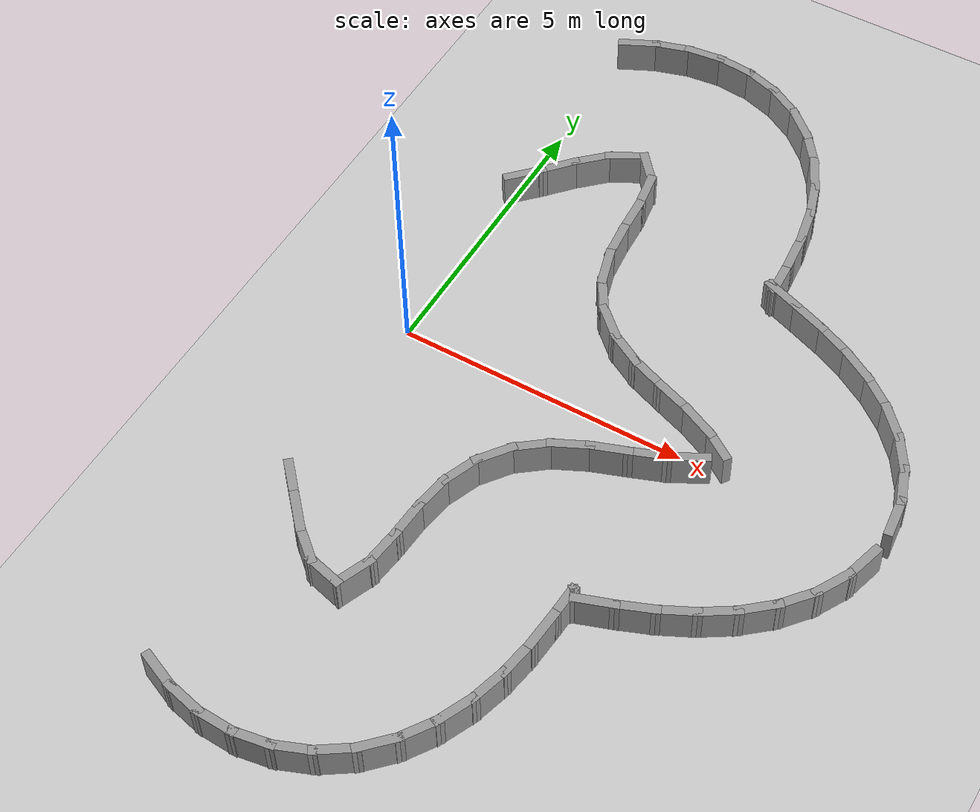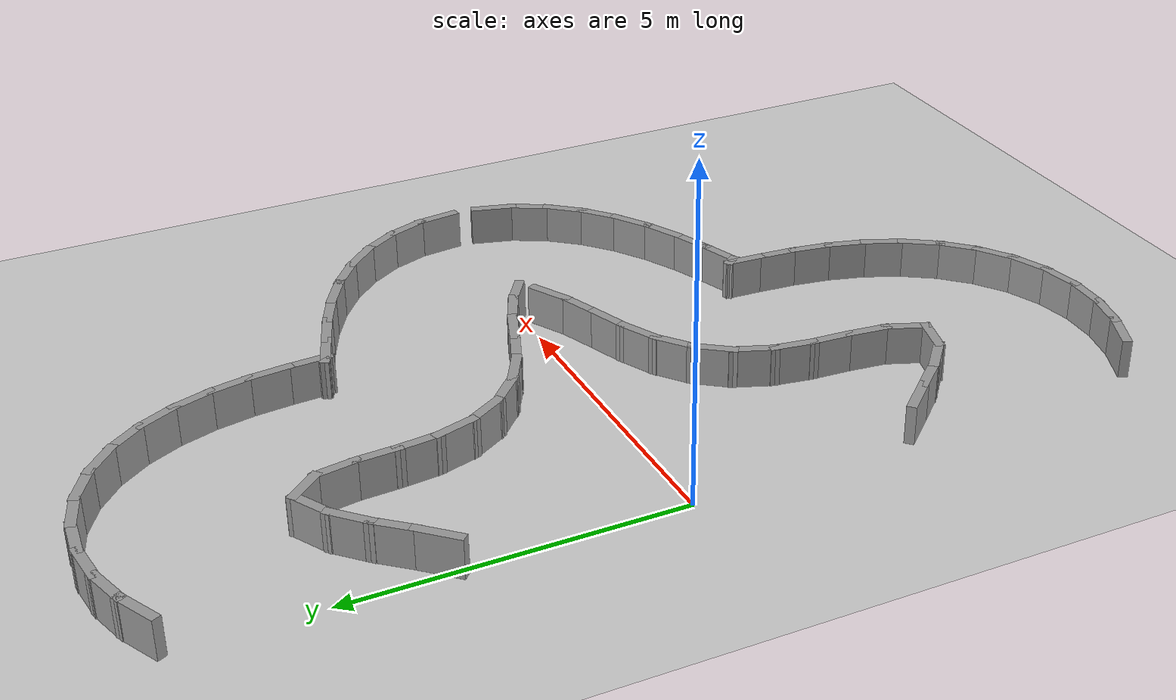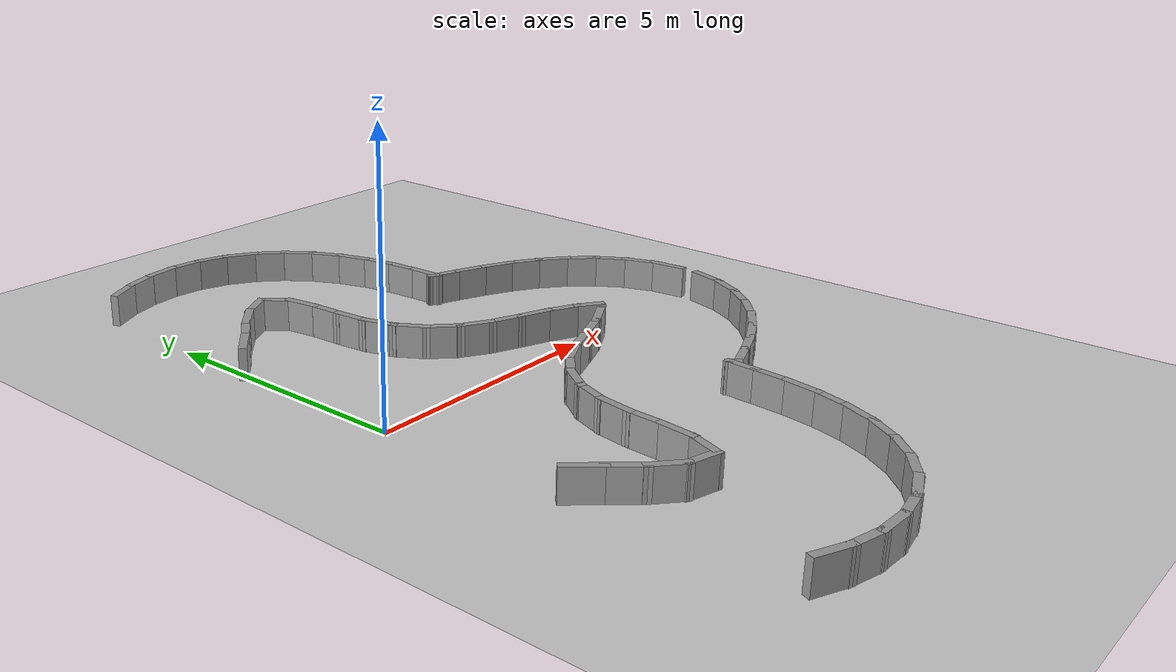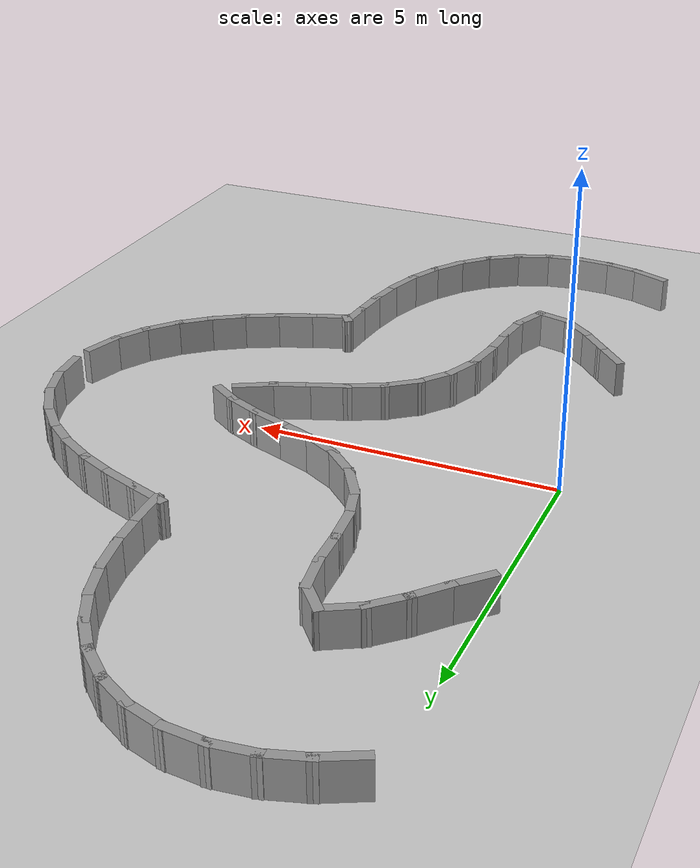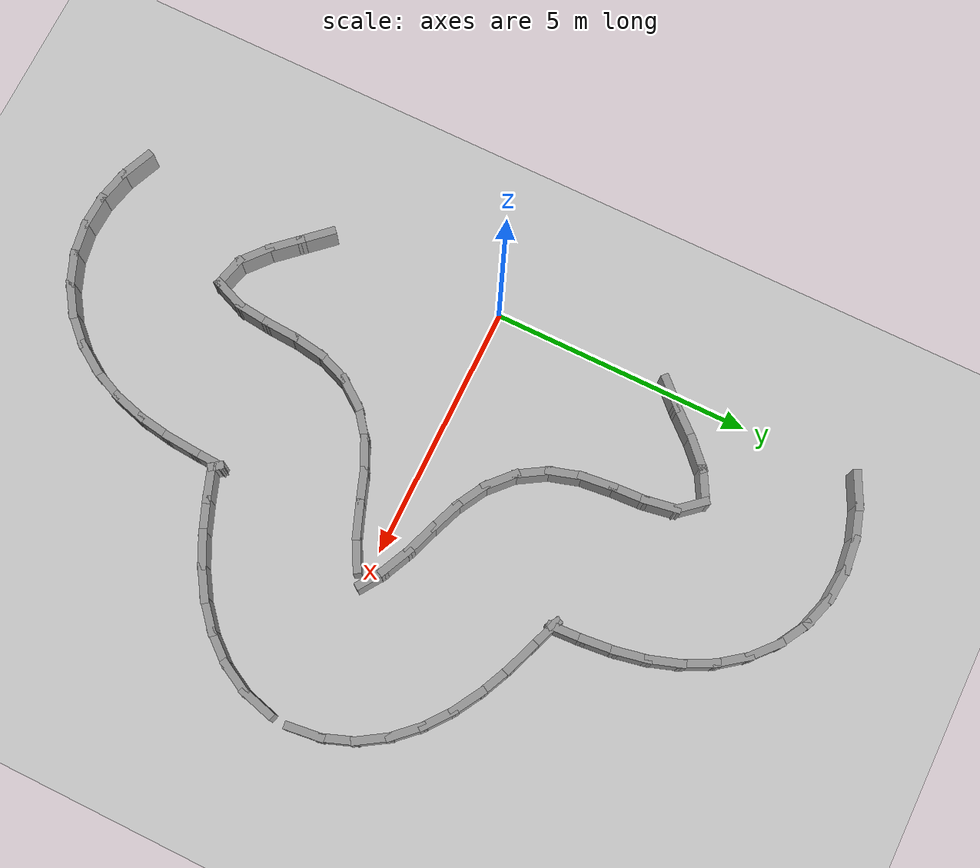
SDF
<sdf version="1.7">
 <world name="default">
  <model name="ground_plane">
   <static>1</static>
   <link name="link">
    <collision name="collision">
     <geometry><plane><normal>0 0 1</normal><size>100 100</size></plane></geometry>
     <surface><friction><ode><mu>100</mu><mu2>50</mu2></ode></friction></surface>
    </collision>
    <visual name="visual">
     <cast_shadows>0</cast_shadows>
     <geometry><plane><normal>0 0 1</normal><size>100 100</size></plane></geometry>
     <material>
      <script><uri>file://media/materials/scripts/gazebo.material</uri><name>Gazebo/Grey</name></script>
     </material>
    </visual>
   </link>
  </model>
  <model name="rand_lobed_02">
   <link name="Wall_0">
    <collision name="Wall_0_Collision">
     <geometry><box><size>0.6231 0.1500 0.6000</size></box></geometry>
     <pose>0 0 0.3000 0 -0 0</pose>
    </collision>
    <visual name="Wall_0_Visual">
     <pose>0 0 0.3000 0 -0 0</pose>
     <geometry><box><size>0.6231 0.1500 0.6000</size></box></geometry>
     <material>
      <script><uri>file://media/materials/scripts/gazebo.material</uri><name>Gazebo/Grey</name></script>
      <ambient>1 1 1 1</ambient>
     </material>
    </visual>
    <pose>5.5545 0.1311 0 0 -0 2.55400</pose>
   </link>
   <link name="Wall_1">
    <collision name="Wall_1_Collision">
     <geometry><box><size>0.7494 0.1500 0.6000</size></box></geometry>
     <pose>0 0 0.3000 0 -0 0</pose>
    </collision>
    <visual name="Wall_1_Visual">
     <pose>0 0 0.3000 0 -0 0</pose>
     <geometry><box><size>0.7494 0.1500 0.6000</size></box></geometry>
     <material>
      <script><uri>file://media/materials/scripts/gazebo.material</uri><name>Gazebo/Grey</name></script>
      <ambient>1 1 1 1</ambient>
     </material>
    </visual>
    <pose>5.0855 0.3879 0 0 -0 2.70903</pose>
   </link>
   <link name="Wall_2">
    <collision name="Wall_2_Collision">
     <geometry><box><size>0.7500 0.1500 0.6000</size></box></geometry>
     <pose>0 0 0.3000 0 -0 0</pose>
    </collision>
    <visual name="Wall_2_Visual">
     <pose>0 0 0.3000 0 -0 0</pose>
     <geometry><box><size>0.7500 0.1500 0.6000</size></box></geometry>
     <material>
      <script><uri>file://media/materials/scripts/gazebo.material</uri><name>Gazebo/Grey</name></script>
      <ambient>1 1 1 1</ambient>
     </material>
    </visual>
    <pose>4.5309 0.6145 0 0 -0 2.79837</pose>
   </link>
   <link name="Wall_3">
    <collision name="Wall_3_Collision">
     <geometry><box><size>0.7498 0.1500 0.6000</size></box></geometry>
     <pose>0 0 0.3000 0 -0 0</pose>
    </collision>
    <visual name="Wall_3_Visual">
     <pose>0 0 0.3000 0 -0 0</pose>
     <geometry><box><size>0.7498 0.1500 0.6000</size></box></geometry>
     <material>
      <script><uri>file://media/materials/scripts/gazebo.material</uri><name>Gazebo/Grey</name></script>
      <ambient>1 1 1 1</ambient>
     </material>
    </visual>
    <pose>3.9682 0.8223 0 0 -0 2.77713</pose>
   </link>
   <link name="Wall_4">
    <collision name="Wall_4_Collision">
     <geometry><box><size>0.7490 0.1500 0.6000</size></box></geometry>
     <pose>0 0 0.3000 0 -0 0</pose>
    </collision>
    <visual name="Wall_4_Visual">
     <pose>0 0 0.3000 0 -0 0</pose>
     <geometry><box><size>0.7490 0.1500 0.6000</size></box></geometry>
     <material>
      <script><uri>file://media/materials/scripts/gazebo.material</uri><name>Gazebo/Grey</name></script>
      <ambient>1 1 1 1</ambient>
     </material>
    </visual>
    <pose>3.4260 1.0744 0 0 -0 2.63553</pose>
   </link>
   <link name="Wall_5">
    <collision name="Wall_5_Collision">
     <geometry><box><size>0.7482 0.1500 0.6000</size></box></geometry>
     <pose>0 0 0.3000 0 -0 0</pose>
    </collision>
    <visual name="Wall_5_Visual">
     <pose>0 0 0.3000 0 -0 0</pose>
     <geometry><box><size>0.7482 0.1500 0.6000</size></box></geometry>
     <material>
      <script><uri>file://media/materials/scripts/gazebo.material</uri><name>Gazebo/Grey</name></script>
      <ambient>1 1 1 1</ambient>
     </material>
    </visual>
    <pose>2.9437 1.4219 0 0 -0 2.39899</pose>
   </link>
   <link name="Wall_6">
    <collision name="Wall_6_Collision">
     <geometry><box><size>0.7481 0.1500 0.6000</size></box></geometry>
     <pose>0 0 0.3000 0 -0 0</pose>
    </collision>
    <visual name="Wall_6_Visual">
     <pose>0 0 0.3000 0 -0 0</pose>
     <geometry><box><size>0.7481 0.1500 0.6000</size></box></geometry>
     <material>
      <script><uri>file://media/materials/scripts/gazebo.material</uri><name>Gazebo/Grey</name></script>
      <ambient>1 1 1 1</ambient>
     </material>
    </visual>
    <pose>2.5665 1.8787 0 0 -0 2.12298</pose>
   </link>
   <link name="Wall_7">
    <collision name="Wall_7_Collision">
     <geometry><box><size>0.7486 0.1500 0.6000</size></box></geometry>
     <pose>0 0 0.3000 0 -0 0</pose>
    </collision>
    <visual name="Wall_7_Visual">
     <pose>0 0 0.3000 0 -0 0</pose>
     <geometry><box><size>0.7486 0.1500 0.6000</size></box></geometry>
     <material>
      <script><uri>file://media/materials/scripts/gazebo.material</uri><name>Gazebo/Grey</name></script>
      <ambient>1 1 1 1</ambient>
     </material>
    </visual>
    <pose>2.3234 2.4199 0 0 -0 1.86292</pose>
   </link>
   <link name="Wall_8">
    <collision name="Wall_8_Collision">
     <geometry><box><size>0.7496 0.1500 0.6000</size></box></geometry>
     <pose>0 0 0.3000 0 -0 0</pose>
    </collision>
    <visual name="Wall_8_Visual">
     <pose>0 0 0.3000 0 -0 0</pose>
     <geometry><box><size>0.7496 0.1500 0.6000</size></box></geometry>
     <material>
      <script><uri>file://media/materials/scripts/gazebo.material</uri><name>Gazebo/Grey</name></script>
      <ambient>1 1 1 1</ambient>
     </material>
    </visual>
    <pose>2.2047 3.0046 0 0 -0 1.67946</pose>
   </link>
   <link name="Wall_9">
    <collision name="Wall_9_Collision">
     <geometry><box><size>0.7500 0.1500 0.6000</size></box></geometry>
     <pose>0 0 0.3000 0 -0 0</pose>
    </collision>
    <visual name="Wall_9_Visual">
     <pose>0 0 0.3000 0 -0 0</pose>
     <geometry><box><size>0.7500 0.1500 0.6000</size></box></geometry>
     <material>
      <script><uri>file://media/materials/scripts/gazebo.material</uri><name>Gazebo/Grey</name></script>
      <ambient>1 1 1 1</ambient>
     </material>
    </visual>
    <pose>2.1546 3.6021 0 0 -0 1.62952</pose>
   </link>
   <link name="Wall_10">
    <collision name="Wall_10_Collision">
     <geometry><box><size>0.7491 0.1500 0.6000</size></box></geometry>
     <pose>0 0 0.3000 0 -0 0</pose>
    </collision>
    <visual name="Wall_10_Visual">
     <pose>0 0 0.3000 0 -0 0</pose>
     <geometry><box><size>0.7491 0.1500 0.6000</size></box></geometry>
     <material>
      <script><uri>file://media/materials/scripts/gazebo.material</uri><name>Gazebo/Grey</name></script>
      <ambient>1 1 1 1</ambient>
     </material>
    </visual>
    <pose>2.0881 4.1971 0 0 -0 1.73457</pose>
   </link>
   <link name="Wall_11">
    <collision name="Wall_11_Collision">
     <geometry><box><size>0.6831 0.1500 0.6000</size></box></geometry>
     <pose>0 0 0.3000 0 -0 0</pose>
    </collision>
    <visual name="Wall_11_Visual">
     <pose>0 0 0.3000 0 -0 0</pose>
     <geometry><box><size>0.6831 0.1500 0.6000</size></box></geometry>
     <material>
      <script><uri>file://media/materials/scripts/gazebo.material</uri><name>Gazebo/Grey</name></script>
      <ambient>1 1 1 1</ambient>
     </material>
    </visual>
    <pose>1.8645 4.6938 0 0 -0 2.28624</pose>
   </link>
   <link name="Wall_12">
    <collision name="Wall_12_Collision">
     <geometry><box><size>0.7454 0.1500 0.6000</size></box></geometry>
     <pose>0 0 0.3000 0 -0 0</pose>
    </collision>
    <visual name="Wall_12_Visual">
     <pose>0 0 0.3000 0 -0 0</pose>
     <geometry><box><size>0.7454 0.1500 0.6000</size></box></geometry>
     <material>
      <script><uri>file://media/materials/scripts/gazebo.material</uri><name>Gazebo/Grey</name></script>
      <ambient>1 1 1 1</ambient>
     </material>
    </visual>
    <pose>1.4286 4.7518 0 0 -0 -2.63997</pose>
   </link>
   <link name="Wall_13">
    <collision name="Wall_13_Collision">
     <geometry><box><size>0.7494 0.1500 0.6000</size></box></geometry>
     <pose>0 0 0.3000 0 -0 0</pose>
    </collision>
    <visual name="Wall_13_Visual">
     <pose>0 0 0.3000 0 -0 0</pose>
     <geometry><box><size>0.7494 0.1500 0.6000</size></box></geometry>
     <material>
      <script><uri>file://media/materials/scripts/gazebo.material</uri><name>Gazebo/Grey</name></script>
      <ambient>1 1 1 1</ambient>
     </material>
    </visual>
    <pose>0.9505 4.4020 0 0 -0 -2.38054</pose>
   </link>
   <link name="Wall_14">
    <collision name="Wall_14_Collision">
     <geometry><box><size>0.7500 0.1500 0.6000</size></box></geometry>
     <pose>0 0 0.3000 0 -0 0</pose>
    </collision>
    <visual name="Wall_14_Visual">
     <pose>0 0 0.3000 0 -0 0</pose>
     <geometry><box><size>0.7500 0.1500 0.6000</size></box></geometry>
     <material>
      <script><uri>file://media/materials/scripts/gazebo.material</uri><name>Gazebo/Grey</name></script>
      <ambient>1 1 1 1</ambient>
     </material>
    </visual>
    <pose>0.5348 3.9705 0 0 -0 -2.29493</pose>
   </link>
   <link name="Wall_15">
    <collision name="Wall_15_Collision">
     <geometry><box><size>0.7497 0.1500 0.6000</size></box></geometry>
     <pose>0 0 0.3000 0 -0 0</pose>
    </collision>
    <visual name="Wall_15_Visual">
     <pose>0 0 0.3000 0 -0 0</pose>
     <geometry><box><size>0.7497 0.1500 0.6000</size></box></geometry>
     <material>
      <script><uri>file://media/materials/scripts/gazebo.material</uri><name>Gazebo/Grey</name></script>
      <ambient>1 1 1 1</ambient>
     </material>
    </visual>
    <pose>0.1277 3.5302 0 0 -0 -2.33905</pose>
   </link>
   <link name="Wall_44">
    <collision name="Wall_44_Collision">
     <geometry><box><size>0.7499 0.1500 0.6000</size></box></geometry>
     <pose>0 0 0.3000 0 -0 0</pose>
    </collision>
    <visual name="Wall_44_Visual">
     <pose>0 0 0.3000 0 -0 0</pose>
     <geometry><box><size>0.7499 0.1500 0.6000</size></box></geometry>
     <material>
      <script><uri>file://media/materials/scripts/gazebo.material</uri><name>Gazebo/Grey</name></script>
      <ambient>1 1 1 1</ambient>
     </material>
    </visual>
    <pose>0.2588 -3.6670 0 0 -0 -0.83092</pose>
   </link>
   <link name="Wall_45">
    <collision name="Wall_45_Collision">
     <geometry><box><size>0.7499 0.1500 0.6000</size></box></geometry>
     <pose>0 0 0.3000 0 -0 0</pose>
    </collision>
    <visual name="Wall_45_Visual">
     <pose>0 0 0.3000 0 -0 0</pose>
     <geometry><box><size>0.7499 0.1500 0.6000</size></box></geometry>
     <material>
      <script><uri>file://media/materials/scripts/gazebo.material</uri><name>Gazebo/Grey</name></script>
      <ambient>1 1 1 1</ambient>
     </material>
    </visual>
    <pose>0.6627 -4.1105 0 0 -0 -0.83336</pose>
   </link>
   <link name="Wall_46">
    <collision name="Wall_46_Collision">
     <geometry><box><size>0.7490 0.1500 0.6000</size></box></geometry>
     <pose>0 0 0.3000 0 -0 0</pose>
    </collision>
    <visual name="Wall_46_Visual">
     <pose>0 0 0.3000 0 -0 0</pose>
     <geometry><box><size>0.7490 0.1500 0.6000</size></box></geometry>
     <material>
      <script><uri>file://media/materials/scripts/gazebo.material</uri><name>Gazebo/Grey</name></script>
      <ambient>1 1 1 1</ambient>
     </material>
    </visual>
    <pose>1.0924 -4.5267 0 0 -0 -0.70524</pose>
   </link>
   <link name="Wall_47">
    <collision name="Wall_47_Collision">
     <geometry><box><size>0.7100 0.1500 0.6000</size></box></geometry>
     <pose>0 0 0.3000 0 -0 0</pose>
    </collision>
    <visual name="Wall_47_Visual">
     <pose>0 0 0.3000 0 -0 0</pose>
     <geometry><box><size>0.7100 0.1500 0.6000</size></box></geometry>
     <material>
      <script><uri>file://media/materials/scripts/gazebo.material</uri><name>Gazebo/Grey</name></script>
      <ambient>1 1 1 1</ambient>
     </material>
    </visual>
    <pose>1.5917 -4.7902 0 0 -0 -0.25059</pose>
   </link>
   <link name="Wall_48">
    <collision name="Wall_48_Collision">
     <geometry><box><size>0.7439 0.1500 0.6000</size></box></geometry>
     <pose>0 0 0.3000 0 -0 0</pose>
    </collision>
    <visual name="Wall_48_Visual">
     <pose>0 0 0.3000 0 -0 0</pose>
     <geometry><box><size>0.7439 0.1500 0.6000</size></box></geometry>
     <material>
      <script><uri>file://media/materials/scripts/gazebo.material</uri><name>Gazebo/Grey</name></script>
      <ambient>1 1 1 1</ambient>
     </material>
    </visual>
    <pose>1.9731 -4.5839 0 0 -0 1.19066</pose>
   </link>
   <link name="Wall_49">
    <collision name="Wall_49_Collision">
     <geometry><box><size>0.7496 0.1500 0.6000</size></box></geometry>
     <pose>0 0 0.3000 0 -0 0</pose>
    </collision>
    <visual name="Wall_49_Visual">
     <pose>0 0 0.3000 0 -0 0</pose>
     <geometry><box><size>0.7496 0.1500 0.6000</size></box></geometry>
     <material>
      <script><uri>file://media/materials/scripts/gazebo.material</uri><name>Gazebo/Grey</name></script>
      <ambient>1 1 1 1</ambient>
     </material>
    </visual>
    <pose>2.1168 -4.0103 0 0 -0 1.45869</pose>
   </link>
   <link name="Wall_50">
    <collision name="Wall_50_Collision">
     <geometry><box><size>0.7500 0.1500 0.6000</size></box></geometry>
     <pose>0 0 0.3000 0 -0 0</pose>
    </collision>
    <visual name="Wall_50_Visual">
     <pose>0 0 0.3000 0 -0 0</pose>
     <geometry><box><size>0.7500 0.1500 0.6000</size></box></geometry>
     <material>
      <script><uri>file://media/materials/scripts/gazebo.material</uri><name>Gazebo/Grey</name></script>
      <ambient>1 1 1 1</ambient>
     </material>
    </visual>
    <pose>2.1678 -3.4129 0 0 -0 1.51250</pose>
   </link>
   <link name="Wall_51">
    <collision name="Wall_51_Collision">
     <geometry><box><size>0.7493 0.1500 0.6000</size></box></geometry>
     <pose>0 0 0.3000 0 -0 0</pose>
    </collision>
    <visual name="Wall_51_Visual">
     <pose>0 0 0.3000 0 -0 0</pose>
     <geometry><box><size>0.7493 0.1500 0.6000</size></box></geometry>
     <material>
      <script><uri>file://media/materials/scripts/gazebo.material</uri><name>Gazebo/Grey</name></script>
      <ambient>1 1 1 1</ambient>
     </material>
    </visual>
    <pose>2.2314 -2.8173 0 0 -0 1.41642</pose>
   </link>
   <link name="Wall_52">
    <collision name="Wall_52_Collision">
     <geometry><box><size>0.7484 0.1500 0.6000</size></box></geometry>
     <pose>0 0 0.3000 0 -0 0</pose>
    </collision>
    <visual name="Wall_52_Visual">
     <pose>0 0 0.3000 0 -0 0</pose>
     <geometry><box><size>0.7484 0.1500 0.6000</size></box></geometry>
     <material>
      <script><uri>file://media/materials/scripts/gazebo.material</uri><name>Gazebo/Grey</name></script>
      <ambient>1 1 1 1</ambient>
     </material>
    </visual>
    <pose>2.3854 -2.2422 0 0 -0 1.20157</pose>
   </link>
   <link name="Wall_53">
    <collision name="Wall_53_Collision">
     <geometry><box><size>0.7480 0.1500 0.6000</size></box></geometry>
     <pose>0 0 0.3000 0 -0 0</pose>
    </collision>
    <visual name="Wall_53_Visual">
     <pose>0 0 0.3000 0 -0 0</pose>
     <geometry><box><size>0.7480 0.1500 0.6000</size></box></geometry>
     <material>
      <script><uri>file://media/materials/scripts/gazebo.material</uri><name>Gazebo/Grey</name></script>
      <ambient>1 1 1 1</ambient>
     </material>
    </visual>
    <pose>2.6720 -1.7234 0 0 -0 0.93051</pose>
   </link>
   <link name="Wall_54">
    <collision name="Wall_54_Collision">
     <geometry><box><size>0.7484 0.1500 0.6000</size></box></geometry>
     <pose>0 0 0.3000 0 -0 0</pose>
    </collision>
    <visual name="Wall_54_Visual">
     <pose>0 0 0.3000 0 -0 0</pose>
     <geometry><box><size>0.7484 0.1500 0.6000</size></box></geometry>
     <material>
      <script><uri>file://media/materials/scripts/gazebo.material</uri><name>Gazebo/Grey</name></script>
      <ambient>1 1 1 1</ambient>
     </material>
    </visual>
    <pose>3.0868 -1.3000 0 0 -0 0.66095</pose>
   </link>
   <link name="Wall_55">
    <collision name="Wall_55_Collision">
     <geometry><box><size>0.7493 0.1500 0.6000</size></box></geometry>
     <pose>0 0 0.3000 0 -0 0</pose>
    </collision>
    <visual name="Wall_55_Visual">
     <pose>0 0 0.3000 0 -0 0</pose>
     <geometry><box><size>0.7493 0.1500 0.6000</size></box></geometry>
     <material>
      <script><uri>file://media/materials/scripts/gazebo.material</uri><name>Gazebo/Grey</name></script>
      <ambient>1 1 1 1</ambient>
     </material>
    </visual>
    <pose>3.5930 -0.9863 0 0 -0 0.44876</pose>
   </link>
   <link name="Wall_56">
    <collision name="Wall_56_Collision">
     <geometry><box><size>0.7500 0.1500 0.6000</size></box></geometry>
     <pose>0 0 0.3000 0 -0 0</pose>
    </collision>
    <visual name="Wall_56_Visual">
     <pose>0 0 0.3000 0 -0 0</pose>
     <geometry><box><size>0.7500 0.1500 0.6000</size></box></geometry>
     <material>
      <script><uri>file://media/materials/scripts/gazebo.material</uri><name>Gazebo/Grey</name></script>
      <ambient>1 1 1 1</ambient>
     </material>
    </visual>
    <pose>4.1453 -0.7549 0 0 -0 0.34505</pose>
   </link>
   <link name="Wall_57">
    <collision name="Wall_57_Collision">
     <geometry><box><size>0.7499 0.1500 0.6000</size></box></geometry>
     <pose>0 0 0.3000 0 -0 0</pose>
    </collision>
    <visual name="Wall_57_Visual">
     <pose>0 0 0.3000 0 -0 0</pose>
     <geometry><box><size>0.7499 0.1500 0.6000</size></box></geometry>
     <material>
      <script><uri>file://media/materials/scripts/gazebo.material</uri><name>Gazebo/Grey</name></script>
      <ambient>1 1 1 1</ambient>
     </material>
    </visual>
    <pose>4.7084 -0.5478 0 0 -0 0.35956</pose>
   </link>
   <link name="Wall_58">
    <collision name="Wall_58_Collision">
     <geometry><box><size>0.7490 0.1500 0.6000</size></box></geometry>
     <pose>0 0 0.3000 0 -0 0</pose>
    </collision>
    <visual name="Wall_58_Visual">
     <pose>0 0 0.3000 0 -0 0</pose>
     <geometry><box><size>0.7490 0.1500 0.6000</size></box></geometry>
     <material>
      <script><uri>file://media/materials/scripts/gazebo.material</uri><name>Gazebo/Grey</name></script>
      <ambient>1 1 1 1</ambient>
     </material>
    </visual>
    <pose>5.2536 -0.3019 0 0 -0 0.48808</pose>
   </link>
   <link name="Wall_59">
    <collision name="Wall_59_Collision">
     <geometry><box><size>0.7486 0.1500 0.6000</size></box></geometry>
     <pose>0 0 0.3000 0 -0 0</pose>
    </collision>
    <visual name="Wall_59_Visual">
     <pose>0 0 0.3000 0 -0 0</pose>
     <geometry><box><size>0.7486 0.1500 0.6000</size></box></geometry>
     <material>
      <script><uri>file://media/materials/scripts/gazebo.material</uri><name>Gazebo/Grey</name></script>
      <ambient>1 1 1 1</ambient>
     </material>
    </visual>
    <pose>8.4527 0.2971 0 0 -0 1.69082</pose>
   </link>
   <link name="Wall_60">
    <collision name="Wall_60_Collision">
     <geometry><box><size>0.7487 0.1500 0.6000</size></box></geometry>
     <pose>0 0 0.3000 0 -0 0</pose>
    </collision>
    <visual name="Wall_60_Visual">
     <pose>0 0 0.3000 0 -0 0</pose>
     <geometry><box><size>0.7487 0.1500 0.6000</size></box></geometry>
     <material>
      <script><uri>file://media/materials/scripts/gazebo.material</uri><name>Gazebo/Grey</name></script>
      <ambient>1 1 1 1</ambient>
     </material>
    </visual>
    <pose>8.3135 0.8752 0 0 -0 1.92353</pose>
   </link>
   <link name="Wall_61">
    <collision name="Wall_61_Collision">
     <geometry><box><size>0.7490 0.1500 0.6000</size></box></geometry>
     <pose>0 0 0.3000 0 -0 0</pose>
    </collision>
    <visual name="Wall_61_Visual">
     <pose>0 0 0.3000 0 -0 0</pose>
     <geometry><box><size>0.7490 0.1500 0.6000</size></box></geometry>
     <material>
      <script><uri>file://media/materials/scripts/gazebo.material</uri><name>Gazebo/Grey</name></script>
      <ambient>1 1 1 1</ambient>
     </material>
    </visual>
    <pose>8.0490 1.4086 0 0 -0 2.13859</pose>
   </link>
   <link name="Wall_62">
    <collision name="Wall_62_Collision">
     <geometry><box><size>0.7492 0.1500 0.6000</size></box></geometry>
     <pose>0 0 0.3000 0 -0 0</pose>
    </collision>
    <visual name="Wall_62_Visual">
     <pose>0 0 0.3000 0 -0 0</pose>
     <geometry><box><size>0.7492 0.1500 0.6000</size></box></geometry>
     <material>
      <script><uri>file://media/materials/scripts/gazebo.material</uri><name>Gazebo/Grey</name></script>
      <ambient>1 1 1 1</ambient>
     </material>
    </visual>
    <pose>7.6823 1.8790 0 0 -0 2.32723</pose>
   </link>
   <link name="Wall_63">
    <collision name="Wall_63_Collision">
     <geometry><box><size>0.7495 0.1500 0.6000</size></box></geometry>
     <pose>0 0 0.3000 0 -0 0</pose>
    </collision>
    <visual name="Wall_63_Visual">
     <pose>0 0 0.3000 0 -0 0</pose>
     <geometry><box><size>0.7495 0.1500 0.6000</size></box></geometry>
     <material>
      <script><uri>file://media/materials/scripts/gazebo.material</uri><name>Gazebo/Grey</name></script>
      <ambient>1 1 1 1</ambient>
     </material>
    </visual>
    <pose>7.2392 2.2797 0 0 -0 2.48560</pose>
   </link>
   <link name="Wall_64">
    <collision name="Wall_64_Collision">
     <geometry><box><size>0.7497 0.1500 0.6000</size></box></geometry>
     <pose>0 0 0.3000 0 -0 0</pose>
    </collision>
    <visual name="Wall_64_Visual">
     <pose>0 0 0.3000 0 -0 0</pose>
     <geometry><box><size>0.7497 0.1500 0.6000</size></box></geometry>
     <material>
      <script><uri>file://media/materials/scripts/gazebo.material</uri><name>Gazebo/Grey</name></script>
      <ambient>1 1 1 1</ambient>
     </material>
    </visual>
    <pose>6.7425 2.6134 0 0 -0 2.61445</pose>
   </link>
   <link name="Wall_65">
    <collision name="Wall_65_Collision">
     <geometry><box><size>0.7498 0.1500 0.6000</size></box></geometry>
     <pose>0 0 0.3000 0 -0 0</pose>
    </collision>
    <visual name="Wall_65_Visual">
     <pose>0 0 0.3000 0 -0 0</pose>
     <geometry><box><size>0.7498 0.1500 0.6000</size></box></geometry>
     <material>
      <script><uri>file://media/materials/scripts/gazebo.material</uri><name>Gazebo/Grey</name></script>
      <ambient>1 1 1 1</ambient>
     </material>
    </visual>
    <pose>6.2103 2.8883 0 0 -0 2.71509</pose>
   </link>
   <link name="Wall_66">
    <collision name="Wall_66_Collision">
     <geometry><box><size>0.7499 0.1500 0.6000</size></box></geometry>
     <pose>0 0 0.3000 0 -0 0</pose>
    </collision>
    <visual name="Wall_66_Visual">
     <pose>0 0 0.3000 0 -0 0</pose>
     <geometry><box><size>0.7499 0.1500 0.6000</size></box></geometry>
     <material>
      <script><uri>file://media/materials/scripts/gazebo.material</uri><name>Gazebo/Grey</name></script>
      <ambient>1 1 1 1</ambient>
     </material>
    </visual>
    <pose>5.6562 3.1171 0 0 -0 2.78482</pose>
   </link>
   <link name="Wall_67">
    <collision name="Wall_67_Collision">
     <geometry><box><size>0.7499 0.1500 0.6000</size></box></geometry>
     <pose>0 0 0.3000 0 -0 0</pose>
    </collision>
    <visual name="Wall_67_Visual">
     <pose>0 0 0.3000 0 -0 0</pose>
     <geometry><box><size>0.7499 0.1500 0.6000</size></box></geometry>
     <material>
      <script><uri>file://media/materials/scripts/gazebo.material</uri><name>Gazebo/Grey</name></script>
      <ambient>1 1 1 1</ambient>
     </material>
    </visual>
    <pose>5.0930 3.3238 0 0 -0 2.79489</pose>
   </link>
   <link name="Wall_68">
    <collision name="Wall_68_Collision">
     <geometry><box><size>0.2735 0.1500 0.6000</size></box></geometry>
     <pose>0 0 0.3000 0 -0 0</pose>
    </collision>
    <visual name="Wall_68_Visual">
     <pose>0 0 0.3000 0 -0 0</pose>
     <geometry><box><size>0.2735 0.1500 0.6000</size></box></geometry>
     <material>
      <script><uri>file://media/materials/scripts/gazebo.material</uri><name>Gazebo/Grey</name></script>
      <ambient>1 1 1 1</ambient>
     </material>
    </visual>
    <pose>4.8615 3.3902 0 0 -0 -0.61273</pose>
   </link>
   <link name="Wall_69">
    <collision name="Wall_69_Collision">
     <geometry><box><size>0.7500 0.1500 0.6000</size></box></geometry>
     <pose>0 0 0.3000 0 -0 0</pose>
    </collision>
    <visual name="Wall_69_Visual">
     <pose>0 0 0.3000 0 -0 0</pose>
     <geometry><box><size>0.7500 0.1500 0.6000</size></box></geometry>
     <material>
      <script><uri>file://media/materials/scripts/gazebo.material</uri><name>Gazebo/Grey</name></script>
      <ambient>1 1 1 1</ambient>
     </material>
    </visual>
    <pose>4.8949 3.6542 0 0 -0 1.62777</pose>
   </link>
   <link name="Wall_70">
    <collision name="Wall_70_Collision">
     <geometry><box><size>0.7498 0.1500 0.6000</size></box></geometry>
     <pose>0 0 0.3000 0 -0 0</pose>
    </collision>
    <visual name="Wall_70_Visual">
     <pose>0 0 0.3000 0 -0 0</pose>
     <geometry><box><size>0.7498 0.1500 0.6000</size></box></geometry>
     <material>
      <script><uri>file://media/materials/scripts/gazebo.material</uri><name>Gazebo/Grey</name></script>
      <ambient>1 1 1 1</ambient>
     </material>
    </visual>
    <pose>4.8476 4.2521 0 0 -0 1.67159</pose>
   </link>
   <link name="Wall_71">
    <collision name="Wall_71_Collision">
     <geometry><box><size>0.7497 0.1500 0.6000</size></box></geometry>
     <pose>0 0 0.3000 0 -0 0</pose>
    </collision>
    <visual name="Wall_71_Visual">
     <pose>0 0 0.3000 0 -0 0</pose>
     <geometry><box><size>0.7497 0.1500 0.6000</size></box></geometry>
     <material>
      <script><uri>file://media/materials/scripts/gazebo.material</uri><name>Gazebo/Grey</name></script>
      <ambient>1 1 1 1</ambient>
     </material>
    </visual>
    <pose>4.7588 4.8446 0 0 -0 1.76757</pose>
   </link>
   <link name="Wall_72">
    <collision name="Wall_72_Collision">
     <geometry><box><size>0.7495 0.1500 0.6000</size></box></geometry>
     <pose>0 0 0.3000 0 -0 0</pose>
    </collision>
    <visual name="Wall_72_Visual">
     <pose>0 0 0.3000 0 -0 0</pose>
     <geometry><box><size>0.7495 0.1500 0.6000</size></box></geometry>
     <material>
      <script><uri>file://media/materials/scripts/gazebo.material</uri><name>Gazebo/Grey</name></script>
      <ambient>1 1 1 1</ambient>
     </material>
    </visual>
    <pose>4.6051 5.4229 0 0 -0 1.89376</pose>
   </link>
   <link name="Wall_73">
    <collision name="Wall_73_Collision">
     <geometry><box><size>0.7493 0.1500 0.6000</size></box></geometry>
     <pose>0 0 0.3000 0 -0 0</pose>
    </collision>
    <visual name="Wall_73_Visual">
     <pose>0 0 0.3000 0 -0 0</pose>
     <geometry><box><size>0.7493 0.1500 0.6000</size></box></geometry>
     <material>
      <script><uri>file://media/materials/scripts/gazebo.material</uri><name>Gazebo/Grey</name></script>
      <ambient>1 1 1 1</ambient>
     </material>
    </visual>
    <pose>4.3730 5.9737 0 0 -0 2.04559</pose>
   </link>
   <link name="Wall_74">
    <collision name="Wall_74_Collision">
     <geometry><box><size>0.7491 0.1500 0.6000</size></box></geometry>
     <pose>0 0 0.3000 0 -0 0</pose>
    </collision>
    <visual name="Wall_74_Visual">
     <pose>0 0 0.3000 0 -0 0</pose>
     <geometry><box><size>0.7491 0.1500 0.6000</size></box></geometry>
     <material>
      <script><uri>file://media/materials/scripts/gazebo.material</uri><name>Gazebo/Grey</name></script>
      <ambient>1 1 1 1</ambient>
     </material>
    </visual>
    <pose>4.0547 6.4787 0 0 -0 2.22066</pose>
   </link>
   <link name="Wall_75">
    <collision name="Wall_75_Collision">
     <geometry><box><size>0.7490 0.1500 0.6000</size></box></geometry>
     <pose>0 0 0.3000 0 -0 0</pose>
    </collision>
    <visual name="Wall_75_Visual">
     <pose>0 0 0.3000 0 -0 0</pose>
     <geometry><box><size>0.7490 0.1500 0.6000</size></box></geometry>
     <material>
      <script><uri>file://media/materials/scripts/gazebo.material</uri><name>Gazebo/Grey</name></script>
      <ambient>1 1 1 1</ambient>
     </material>
    </visual>
    <pose>3.6494 6.9159 0 0 -0 2.41598</pose>
   </link>
   <link name="Wall_76">
    <collision name="Wall_76_Collision">
     <geometry><box><size>0.7489 0.1500 0.6000</size></box></geometry>
     <pose>0 0 0.3000 0 -0 0</pose>
    </collision>
    <visual name="Wall_76_Visual">
     <pose>0 0 0.3000 0 -0 0</pose>
     <geometry><box><size>0.7489 0.1500 0.6000</size></box></geometry>
     <material>
      <script><uri>file://media/materials/scripts/gazebo.material</uri><name>Gazebo/Grey</name></script>
      <ambient>1 1 1 1</ambient>
     </material>
    </visual>
    <pose>3.1650 7.2625 0 0 -0 2.62505</pose>
   </link>
   <link name="Wall_77">
    <collision name="Wall_77_Collision">
     <geometry><box><size>0.7488 0.1500 0.6000</size></box></geometry>
     <pose>0 0 0.3000 0 -0 0</pose>
    </collision>
    <visual name="Wall_77_Visual">
     <pose>0 0 0.3000 0 -0 0</pose>
     <geometry><box><size>0.7488 0.1500 0.6000</size></box></geometry>
     <material>
      <script><uri>file://media/materials/scripts/gazebo.material</uri><name>Gazebo/Grey</name></script>
      <ambient>1 1 1 1</ambient>
     </material>
    </visual>
    <pose>2.6188 7.4995 0 0 -0 2.83954</pose>
   </link>
   <link name="Wall_78">
    <collision name="Wall_78_Collision">
     <geometry><box><size>0.7489 0.1500 0.6000</size></box></geometry>
     <pose>0 0 0.3000 0 -0 0</pose>
    </collision>
    <visual name="Wall_78_Visual">
     <pose>0 0 0.3000 0 -0 0</pose>
     <geometry><box><size>0.7489 0.1500 0.6000</size></box></geometry>
     <material>
      <script><uri>file://media/materials/scripts/gazebo.material</uri><name>Gazebo/Grey</name></script>
      <ambient>1 1 1 1</ambient>
     </material>
    </visual>
    <pose>2.0347 7.6156 0 0 -0 3.05114</pose>
   </link>
   <link name="Wall_79">
    <collision name="Wall_79_Collision">
     <geometry><box><size>0.7491 0.1500 0.6000</size></box></geometry>
     <pose>0 0 0.3000 0 -0 0</pose>
    </collision>
    <visual name="Wall_79_Visual">
     <pose>0 0 0.3000 0 -0 0</pose>
     <geometry><box><size>0.7491 0.1500 0.6000</size></box></geometry>
     <material>
      <script><uri>file://media/materials/scripts/gazebo.material</uri><name>Gazebo/Grey</name></script>
      <ambient>1 1 1 1</ambient>
     </material>
    </visual>
    <pose>1.4387 7.6097 0 0 -0 -3.03132</pose>
   </link>
   <link name="Wall_80">
    <collision name="Wall_80_Collision">
     <geometry><box><size>0.7492 0.1500 0.6000</size></box></geometry>
     <pose>0 0 0.3000 0 -0 0</pose>
    </collision>
    <visual name="Wall_80_Visual">
     <pose>0 0 0.3000 0 -0 0</pose>
     <geometry><box><size>0.7492 0.1500 0.6000</size></box></geometry>
     <material>
      <script><uri>file://media/materials/scripts/gazebo.material</uri><name>Gazebo/Grey</name></script>
      <ambient>1 1 1 1</ambient>
     </material>
    </visual>
    <pose>0.8542 7.4901 0 0 -0 -2.84827</pose>
   </link>
   <link name="Wall_81">
    <collision name="Wall_81_Collision">
     <geometry><box><size>0.7494 0.1500 0.6000</size></box></geometry>
     <pose>0 0 0.3000 0 -0 0</pose>
    </collision>
    <visual name="Wall_81_Visual">
     <pose>0 0 0.3000 0 -0 0</pose>
     <geometry><box><size>0.7494 0.1500 0.6000</size></box></geometry>
     <material>
      <script><uri>file://media/materials/scripts/gazebo.material</uri><name>Gazebo/Grey</name></script>
      <ambient>1 1 1 1</ambient>
     </material>
    </visual>
    <pose>0.2981 7.2718 0 0 -0 -2.68664</pose>
   </link>
   <link name="Wall_129">
    <collision name="Wall_129_Collision">
     <geometry><box><size>0.7494 0.1500 0.6000</size></box></geometry>
     <pose>0 0 0.3000 0 -0 0</pose>
    </collision>
    <visual name="Wall_129_Visual">
     <pose>0 0 0.3000 0 -0 0</pose>
     <geometry><box><size>0.7494 0.1500 0.6000</size></box></geometry>
     <material>
      <script><uri>file://media/materials/scripts/gazebo.material</uri><name>Gazebo/Grey</name></script>
      <ambient>1 1 1 1</ambient>
     </material>
    </visual>
    <pose>0.4889 -7.3584 0 0 -0 -0.40094</pose>
   </link>
   <link name="Wall_130">
    <collision name="Wall_130_Collision">
     <geometry><box><size>0.7492 0.1500 0.6000</size></box></geometry>
     <pose>0 0 0.3000 0 -0 0</pose>
    </collision>
    <visual name="Wall_130_Visual">
     <pose>0 0 0.3000 0 -0 0</pose>
     <geometry><box><size>0.7492 0.1500 0.6000</size></box></geometry>
     <material>
      <script><uri>file://media/materials/scripts/gazebo.material</uri><name>Gazebo/Grey</name></script>
      <ambient>1 1 1 1</ambient>
     </material>
    </visual>
    <pose>1.0564 -7.5440 0 0 -0 -0.23131</pose>
   </link>
   <link name="Wall_131">
    <collision name="Wall_131_Collision">
     <geometry><box><size>0.7490 0.1500 0.6000</size></box></geometry>
     <pose>0 0 0.3000 0 -0 0</pose>
    </collision>
    <visual name="Wall_131_Visual">
     <pose>0 0 0.3000 0 -0 0</pose>
     <geometry><box><size>0.7490 0.1500 0.6000</size></box></geometry>
     <material>
      <script><uri>file://media/materials/scripts/gazebo.material</uri><name>Gazebo/Grey</name></script>
      <ambient>1 1 1 1</ambient>
     </material>
    </visual>
    <pose>1.6472 -7.6252 0 0 -0 -0.04172</pose>
   </link>
   <link name="Wall_132">
    <collision name="Wall_132_Collision">
     <geometry><box><size>0.7489 0.1500 0.6000</size></box></geometry>
     <pose>0 0 0.3000 0 -0 0</pose>
    </collision>
    <visual name="Wall_132_Visual">
     <pose>0 0 0.3000 0 -0 0</pose>
     <geometry><box><size>0.7489 0.1500 0.6000</size></box></geometry>
     <material>
      <script><uri>file://media/materials/scripts/gazebo.material</uri><name>Gazebo/Grey</name></script>
      <ambient>1 1 1 1</ambient>
     </material>
    </visual>
    <pose>2.2419 -7.5890 0 0 -0 0.16340</pose>
   </link>
   <link name="Wall_133">
    <collision name="Wall_133_Collision">
     <geometry><box><size>0.7488 0.1500 0.6000</size></box></geometry>
     <pose>0 0 0.3000 0 -0 0</pose>
    </collision>
    <visual name="Wall_133_Visual">
     <pose>0 0 0.3000 0 -0 0</pose>
     <geometry><box><size>0.7488 0.1500 0.6000</size></box></geometry>
     <material>
      <script><uri>file://media/materials/scripts/gazebo.material</uri><name>Gazebo/Grey</name></script>
      <ambient>1 1 1 1</ambient>
     </material>
    </visual>
    <pose>2.8157 -7.4299 0 0 -0 0.37743</pose>
   </link>
   <link name="Wall_134">
    <collision name="Wall_134_Collision">
     <geometry><box><size>0.7489 0.1500 0.6000</size></box></geometry>
     <pose>0 0 0.3000 0 -0 0</pose>
    </collision>
    <visual name="Wall_134_Visual">
     <pose>0 0 0.3000 0 -0 0</pose>
     <geometry><box><size>0.7489 0.1500 0.6000</size></box></geometry>
     <material>
      <script><uri>file://media/materials/scripts/gazebo.material</uri><name>Gazebo/Grey</name></script>
      <ambient>1 1 1 1</ambient>
     </material>
    </visual>
    <pose>3.3427 -7.1527 0 0 -0 0.59105</pose>
   </link>
   <link name="Wall_135">
    <collision name="Wall_135_Collision">
     <geometry><box><size>0.7490 0.1500 0.6000</size></box></geometry>
     <pose>0 0 0.3000 0 -0 0</pose>
    </collision>
    <visual name="Wall_135_Visual">
     <pose>0 0 0.3000 0 -0 0</pose>
     <geometry><box><size>0.7490 0.1500 0.6000</size></box></geometry>
     <material>
      <script><uri>file://media/materials/scripts/gazebo.material</uri><name>Gazebo/Grey</name></script>
      <ambient>1 1 1 1</ambient>
     </material>
    </visual>
    <pose>3.8009 -6.7719 0 0 -0 0.79587</pose>
   </link>
   <link name="Wall_136">
    <collision name="Wall_136_Collision">
     <geometry><box><size>0.7492 0.1500 0.6000</size></box></geometry>
     <pose>0 0 0.3000 0 -0 0</pose>
    </collision>
    <visual name="Wall_136_Visual">
     <pose>0 0 0.3000 0 -0 0</pose>
     <geometry><box><size>0.7492 0.1500 0.6000</size></box></geometry>
     <material>
      <script><uri>file://media/materials/scripts/gazebo.material</uri><name>Gazebo/Grey</name></script>
      <ambient>1 1 1 1</ambient>
     </material>
    </visual>
    <pose>4.1762 -6.3084 0 0 -0 0.98452</pose>
   </link>
   <link name="Wall_137">
    <collision name="Wall_137_Collision">
     <geometry><box><size>0.7494 0.1500 0.6000</size></box></geometry>
     <pose>0 0 0.3000 0 -0 0</pose>
    </collision>
    <visual name="Wall_137_Visual">
     <pose>0 0 0.3000 0 -0 0</pose>
     <geometry><box><size>0.7494 0.1500 0.6000</size></box></geometry>
     <material>
      <script><uri>file://media/materials/scripts/gazebo.material</uri><name>Gazebo/Grey</name></script>
      <ambient>1 1 1 1</ambient>
     </material>
    </visual>
    <pose>4.4638 -5.7850 0 0 -0 1.15204</pose>
   </link>
   <link name="Wall_138">
    <collision name="Wall_138_Collision">
     <geometry><box><size>0.7496 0.1500 0.6000</size></box></geometry>
     <pose>0 0 0.3000 0 -0 0</pose>
    </collision>
    <visual name="Wall_138_Visual">
     <pose>0 0 0.3000 0 -0 0</pose>
     <geometry><box><size>0.7496 0.1500 0.6000</size></box></geometry>
     <material>
      <script><uri>file://media/materials/scripts/gazebo.material</uri><name>Gazebo/Grey</name></script>
      <ambient>1 1 1 1</ambient>
     </material>
    </visual>
    <pose>4.6673 -5.2227 0 0 -0 1.29505</pose>
   </link>
   <link name="Wall_139">
    <collision name="Wall_139_Collision">
     <geometry><box><size>0.7497 0.1500 0.6000</size></box></geometry>
     <pose>0 0 0.3000 0 -0 0</pose>
    </collision>
    <visual name="Wall_139_Visual">
     <pose>0 0 0.3000 0 -0 0</pose>
     <geometry><box><size>0.7497 0.1500 0.6000</size></box></geometry>
     <material>
      <script><uri>file://media/materials/scripts/gazebo.material</uri><name>Gazebo/Grey</name></script>
      <ambient>1 1 1 1</ambient>
     </material>
    </visual>
    <pose>4.7965 -4.6382 0 0 -0 1.41150</pose>
   </link>
   <link name="Wall_140">
    <collision name="Wall_140_Collision">
     <geometry><box><size>0.7499 0.1500 0.6000</size></box></geometry>
     <pose>0 0 0.3000 0 -0 0</pose>
    </collision>
    <visual name="Wall_140_Visual">
     <pose>0 0 0.3000 0 -0 0</pose>
     <geometry><box><size>0.7499 0.1500 0.6000</size></box></geometry>
     <material>
      <script><uri>file://media/materials/scripts/gazebo.material</uri><name>Gazebo/Grey</name></script>
      <ambient>1 1 1 1</ambient>
     </material>
    </visual>
    <pose>4.8670 -4.0430 0 0 -0 1.49402</pose>
   </link>
   <link name="Wall_141">
    <collision name="Wall_141_Collision">
     <geometry><box><size>0.6631 0.1500 0.6000</size></box></geometry>
     <pose>0 0 0.3000 0 -0 0</pose>
    </collision>
    <visual name="Wall_141_Visual">
     <pose>0 0 0.3000 0 -0 0</pose>
     <geometry><box><size>0.6631 0.1500 0.6000</size></box></geometry>
     <material>
      <script><uri>file://media/materials/scripts/gazebo.material</uri><name>Gazebo/Grey</name></script>
      <ambient>1 1 1 1</ambient>
     </material>
    </visual>
    <pose>4.9034 -3.4878 0 0 -0 1.51881</pose>
   </link>
   <link name="Wall_142">
    <collision name="Wall_142_Collision">
     <geometry><box><size>0.2992 0.1500 0.6000</size></box></geometry>
     <pose>0 0 0.3000 0 -0 0</pose>
    </collision>
    <visual name="Wall_142_Visual">
     <pose>0 0 0.3000 0 -0 0</pose>
     <geometry><box><size>0.2992 0.1500 0.6000</size></box></geometry>
     <material>
      <script><uri>file://media/materials/scripts/gazebo.material</uri><name>Gazebo/Grey</name></script>
      <ambient>1 1 1 1</ambient>
     </material>
    </visual>
    <pose>4.9619 -3.2910 0 0 -0 -0.92066</pose>
   </link>
   <link name="Wall_143">
    <collision name="Wall_143_Collision">
     <geometry><box><size>0.7500 0.1500 0.6000</size></box></geometry>
     <pose>0 0 0.3000 0 -0 0</pose>
    </collision>
    <visual name="Wall_143_Visual">
     <pose>0 0 0.3000 0 -0 0</pose>
     <geometry><box><size>0.7500 0.1500 0.6000</size></box></geometry>
     <material>
      <script><uri>file://media/materials/scripts/gazebo.material</uri><name>Gazebo/Grey</name></script>
      <ambient>1 1 1 1</ambient>
     </material>
    </visual>
    <pose>5.2901 -3.2510 0 0 -0 0.33756</pose>
   </link>
   <link name="Wall_144">
    <collision name="Wall_144_Collision">
     <geometry><box><size>0.7499 0.1500 0.6000</size></box></geometry>
     <pose>0 0 0.3000 0 -0 0</pose>
    </collision>
    <visual name="Wall_144_Visual">
     <pose>0 0 0.3000 0 -0 0</pose>
     <geometry><box><size>0.7499 0.1500 0.6000</size></box></geometry>
     <material>
      <script><uri>file://media/materials/scripts/gazebo.material</uri><name>Gazebo/Grey</name></script>
      <ambient>1 1 1 1</ambient>
     </material>
    </visual>
    <pose>5.8520 -3.0412 0 0 -0 0.37703</pose>
   </link>
   <link name="Wall_145">
    <collision name="Wall_145_Collision">
     <geometry><box><size>0.7498 0.1500 0.6000</size></box></geometry>
     <pose>0 0 0.3000 0 -0 0</pose>
    </collision>
    <visual name="Wall_145_Visual">
     <pose>0 0 0.3000 0 -0 0</pose>
     <geometry><box><size>0.7498 0.1500 0.6000</size></box></geometry>
     <material>
      <script><uri>file://media/materials/scripts/gazebo.material</uri><name>Gazebo/Grey</name></script>
      <ambient>1 1 1 1</ambient>
     </material>
    </visual>
    <pose>6.3998 -2.7980 0 0 -0 0.45847</pose>
   </link>
   <link name="Wall_146">
    <collision name="Wall_146_Collision">
     <geometry><box><size>0.7496 0.1500 0.6000</size></box></geometry>
     <pose>0 0 0.3000 0 -0 0</pose>
    </collision>
    <visual name="Wall_146_Visual">
     <pose>0 0 0.3000 0 -0 0</pose>
     <geometry><box><size>0.7496 0.1500 0.6000</size></box></geometry>
     <material>
      <script><uri>file://media/materials/scripts/gazebo.material</uri><name>Gazebo/Grey</name></script>
      <ambient>1 1 1 1</ambient>
     </material>
    </visual>
    <pose>6.9213 -2.5038 0 0 -0 0.56905</pose>
   </link>
   <link name="Wall_147">
    <collision name="Wall_147_Collision">
     <geometry><box><size>0.7494 0.1500 0.6000</size></box></geometry>
     <pose>0 0 0.3000 0 -0 0</pose>
    </collision>
    <visual name="Wall_147_Visual">
     <pose>0 0 0.3000 0 -0 0</pose>
     <geometry><box><size>0.7494 0.1500 0.6000</size></box></geometry>
     <material>
      <script><uri>file://media/materials/scripts/gazebo.material</uri><name>Gazebo/Grey</name></script>
      <ambient>1 1 1 1</ambient>
     </material>
    </visual>
    <pose>7.4015 -2.1473 0 0 -0 0.70803</pose>
   </link>
   <link name="Wall_148">
    <collision name="Wall_148_Collision">
     <geometry><box><size>0.7491 0.1500 0.6000</size></box></geometry>
     <pose>0 0 0.3000 0 -0 0</pose>
    </collision>
    <visual name="Wall_148_Visual">
     <pose>0 0 0.3000 0 -0 0</pose>
     <geometry><box><size>0.7491 0.1500 0.6000</size></box></geometry>
     <material>
      <script><uri>file://media/materials/scripts/gazebo.material</uri><name>Gazebo/Grey</name></script>
      <ambient>1 1 1 1</ambient>
     </material>
    </visual>
    <pose>7.8207 -1.7221 0 0 -0 0.87715</pose>
   </link>
   <link name="Wall_149">
    <collision name="Wall_149_Collision">
     <geometry><box><size>0.7489 0.1500 0.6000</size></box></geometry>
     <pose>0 0 0.3000 0 -0 0</pose>
    </collision>
    <visual name="Wall_149_Visual">
     <pose>0 0 0.3000 0 -0 0</pose>
     <geometry><box><size>0.7489 0.1500 0.6000</size></box></geometry>
     <material>
      <script><uri>file://media/materials/scripts/gazebo.material</uri><name>Gazebo/Grey</name></script>
      <ambient>1 1 1 1</ambient>
     </material>
    </visual>
    <pose>8.1545 -1.2283 0 0 -0 1.07566</pose>
   </link>
   <link name="Wall_150">
    <collision name="Wall_150_Collision">
     <geometry><box><size>0.7487 0.1500 0.6000</size></box></geometry>
     <pose>0 0 0.3000 0 -0 0</pose>
    </collision>
    <visual name="Wall_150_Visual">
     <pose>0 0 0.3000 0 -0 0</pose>
     <geometry><box><size>0.7487 0.1500 0.6000</size></box></geometry>
     <material>
      <script><uri>file://media/materials/scripts/gazebo.material</uri><name>Gazebo/Grey</name></script>
      <ambient>1 1 1 1</ambient>
     </material>
    </visual>
    <pose>8.3775 -0.6766 0 0 -0 1.29779</pose>
   </link>
   <static>1</static>
  </model>
 </world>
</sdf>
